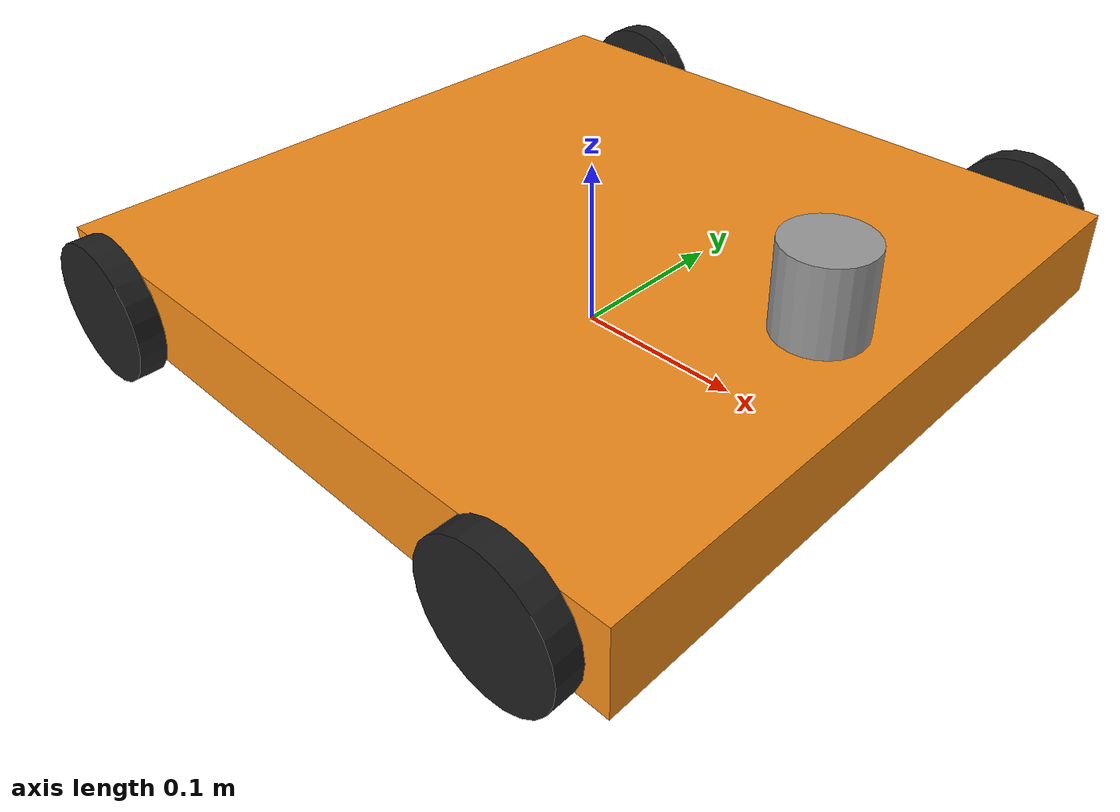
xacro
<?xml version="1.0" ?>

<robot name="amr" xmlns:xacro="http://ros.org/wiki/xacro">

  <!-- ****************** INCLUDE EXTERNAL FILES *******************************  -->
  <xacro:include filename="$(find amr_description)/models/amr/amr.gazebo" />
  <xacro:include filename="$(find amr_description)/models/amr/materials.xacro" />

  <!-- ****************** ROBOT CONSTANTS *******************************  -->
  <xacro:property name="base_width" value="0.40"/>
  <xacro:property name="base_length" value="0.40"/>
  <xacro:property name="base_height" value="0.05"/>
  <xacro:property name="wheel_radius" value="0.04"/>
  <xacro:property name="wheel_width" value="0.015"/>
  <xacro:property name="wheel_ygap" value="0.01"/>
  <xacro:property name="wheel_zoff" value="0.0"/>
  <xacro:property name="wheel_xoff" value="0.15"/>

  <!-- ****************** INERTIAL PROPERTY MACROS *******************************  -->
  <xacro:macro name="box_inertia" params="m w h d">
    <inertial>
      <origin xyz="0 0 0" rpy="${pi/2} 0 ${pi/2}"/>
      <mass value="${m}"/>
      <inertia ixx="${(m/12) * (h*h + d*d)}" ixy="0.0" ixz="0.0" iyy="${(m/12) * (w*w + d*d)}" iyz="0.0" izz="${(m/12) * (w*w + h*h)}"/>
    </inertial>
  </xacro:macro>

  <xacro:macro name="cylinder_inertia" params="m r h">
    <inertial>
      <origin xyz="0 0 0" rpy="${pi/2} 0 0" />
      <mass value="${m}"/>
      <inertia ixx="${(m/12) * (3*r*r + h*h)}" ixy = "0" ixz = "0" iyy="${(m/12) * (3*r*r + h*h)}" iyz = "0" izz="${(m/2) * (r*r)}"/>
    </inertial>
  </xacro:macro>

  <xacro:macro name="sphere_inertia" params="m r">
    <inertial>
      <mass value="${m}"/>
      <inertia ixx="${(2/5) * m * (r*r)}" ixy="0.0" ixz="0.0" iyy="${(2/5) * m * (r*r)}" iyz="0.0" izz="${(2/5) * m * (r*r)}"/>
    </inertial>
  </xacro:macro>

  <!-- ****************** ROBOT BASE FOOTPRINT ***************************  -->
  <link name="base_footprint"/>

  <joint name="base_joint" type="fixed">
    <parent link="base_footprint"/>
    <child link="base_link" />
    <origin xyz="0.0 0.0 ${(wheel_radius+wheel_zoff)}" rpy="0 0 0"/>
  </joint>

  <!-- ********************** ROBOT BASE *********************************  -->
  <link name="base_link">
    <visual>
      <origin xyz="0 0 0" rpy="1.5707963267949 0 3.141592654"/>
      <geometry>
        <box size="${base_length} ${base_height} ${base_width}"/>
      </geometry>
    </visual>
    <collision>
      <geometry>
        <box size="${base_length} ${base_width} ${base_height}"/>
      </geometry>
    </collision>
    <xacro:box_inertia m="1500.0" w="${base_width}" d="${base_length}" h="${base_height}"/>
  </link>

  <!-- *********************** DRIVE WHEELS ******************************  -->
  <xacro:macro name="wheel" params="prefix x_reflect y_reflect">
    <link name="${prefix}_link">
      <visual>
        <origin xyz="0 0 0" rpy="1.5707963267949 0 0"/>
        <geometry>
            <cylinder radius="${wheel_radius}" length="${wheel_width}"/>
        </geometry>
      </visual>
      <collision>
        <origin xyz="0 0 0" rpy="${pi/2} 0 0"/>
        <geometry>
          <cylinder radius="${wheel_radius}" length="${wheel_width}"/>
        </geometry>
      </collision>
      <xacro:cylinder_inertia m="150.0" r="${wheel_radius}" h="${wheel_width}"/>
    </link>

    <joint name="${prefix}_joint" type="continuous">
      <parent link="base_link"/>
      <child link="${prefix}_link"/>
      <origin xyz="${x_reflect*wheel_xoff} ${y_reflect*(base_width/2+wheel_ygap)} ${-wheel_zoff}" rpy="0 0 0"/>
      <axis xyz="0 ${y_reflect} 0"/>
    </joint>
  </xacro:macro>

  <xacro:wheel prefix="drive_r_whl_l" x_reflect="-1" y_reflect="1" />
  <xacro:wheel prefix="drive_r_whl_r" x_reflect="-1" y_reflect="-1" />
  <xacro:wheel prefix="drive_f_whl_l" x_reflect="1" y_reflect="1" />
  <xacro:wheel prefix="drive_f_whl_r" x_reflect="1" y_reflect="-1" />

  <!-- *********************** IMU SETUP *********************************  -->
  <joint name="imu_joint" type="fixed">
    <parent link="base_link"/>
    <child link="imu_link"/>
    <origin xyz="0.0 0 0.05" rpy="0 0 0"/>
  </joint>

  <link name="imu_link"/>

  <!-- *********************** LIDAR SETUP **********************************  -->
  <joint name="lidar_joint" type="fixed">
    <parent link="base_link"/>
    <child link="lidar_link"/>
    <origin xyz="0.15 0 0.05" rpy="0 0 0"/>
  </joint>

  <link name="lidar_link">
    <collision>
     <origin xyz="0 0 0" rpy="0 0 0"/>
     <geometry>
      <cylinder radius="0.025" length="0.05"/>
     </geometry>
    </collision>
    <visual>
     <origin xyz="0 0 0" rpy="0 0 0"/>
     <geometry>
      <cylinder radius="0.025" length="0.05"/>
     </geometry>
    </visual>
    <inertial>
      <mass value="0.100" />
      <origin xyz="0 0 0" rpy="0 0 0"/>
      <inertia ixx="0.001" ixy="0" ixz="0" iyy="0.001" iyz="0" izz="0.001" />
    </inertial>
  </link>

</robot>

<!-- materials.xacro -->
<robot>

  <material name="black">
    <color rgba="0.0 0.0 0.0 1.0"/>
  </material>

  <material name="blue">
    <color rgba="0.0 0.0 0.8 1.0"/>
  </material>

  <material name="green">
    <color rgba="0.0 0.8 0.0 1.0"/>
  </material>

  <material name="grey">
    <color rgba="0.2 0.2 0.2 1.0"/>
  </material>

  <material name="orange">
    <color rgba="${255/255} ${108/255} ${10/255} 1.0"/>
  </material>

  <material name="brown">
    <color rgba="${222/255} ${207/255} ${195/255} 1.0"/>
  </material>

  <material name="red">
    <color rgba="0.8 0.0 0.0 1.0"/>
  </material>

  <material name="white">
    <color rgba="1.0 1.0 1.0 1.0"/>
  </material>

</robot>
